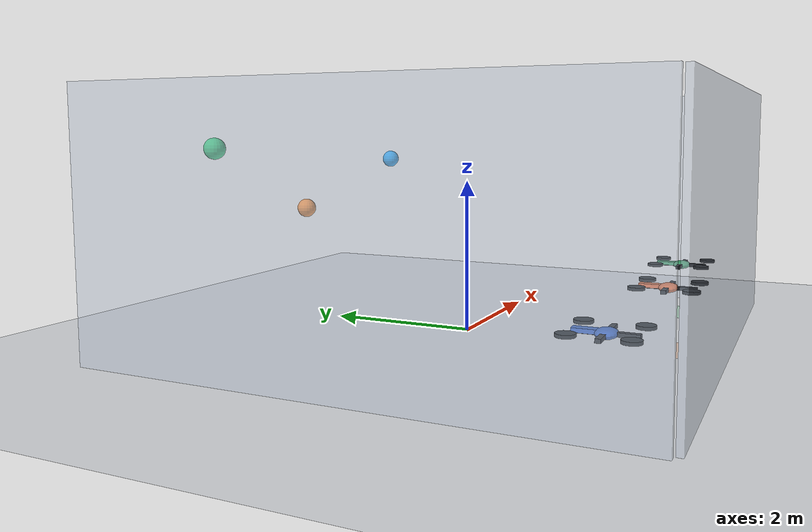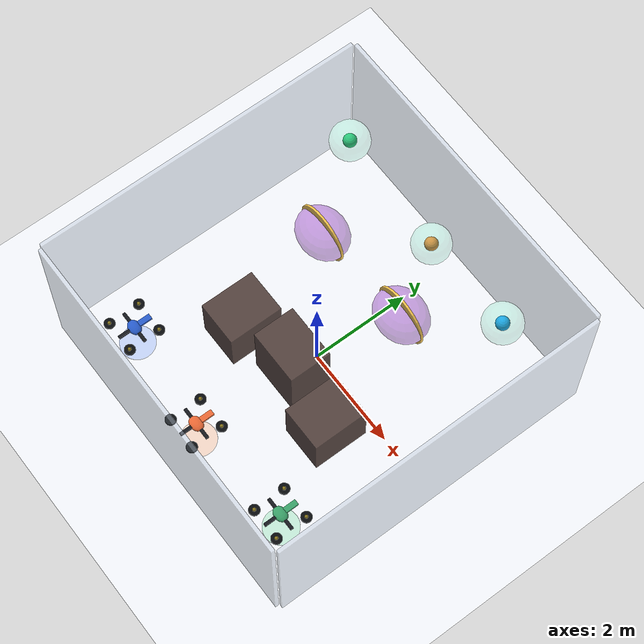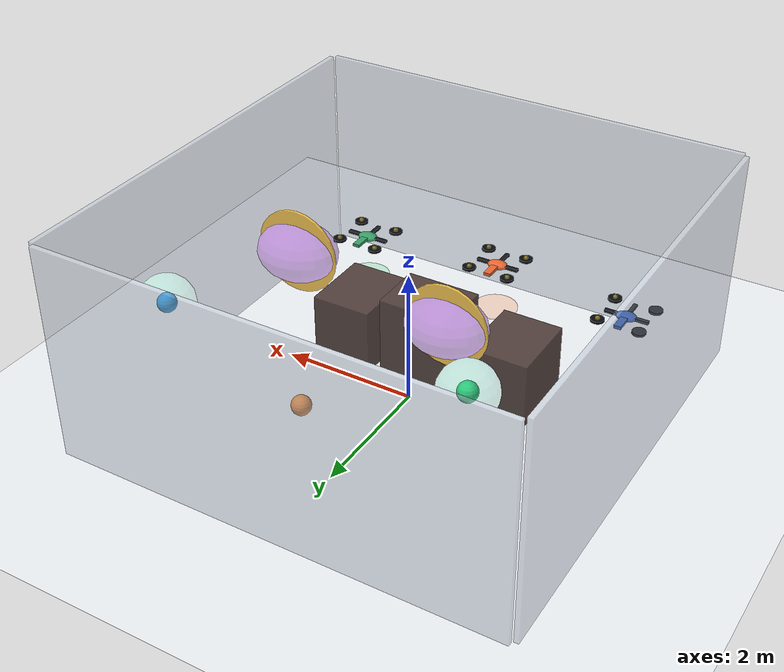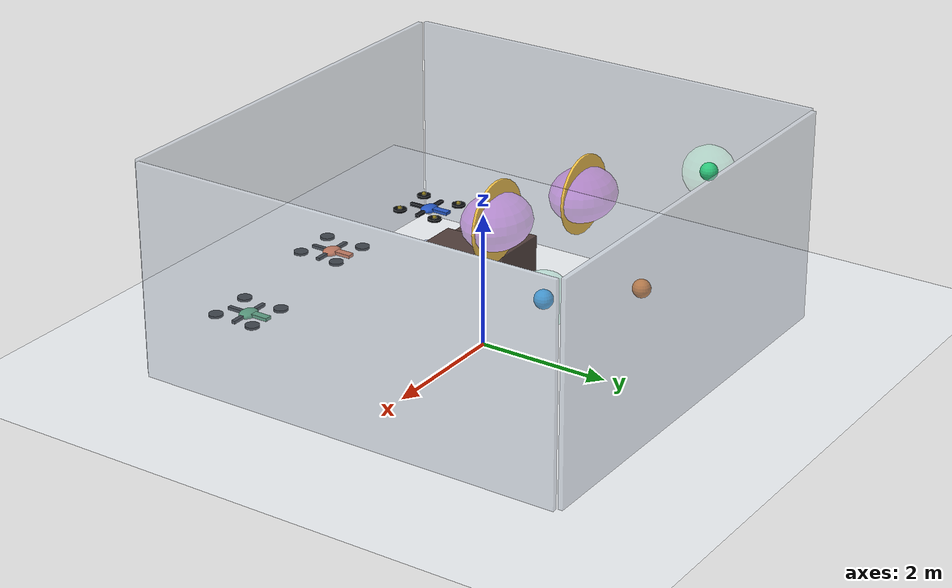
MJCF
<mujoco model="drones3_full_3d">
  <compiler angle="radian" autolimits="true"/>

  <option timestep="0.025" gravity="0 0 -9.81" integrator="Euler"/>
  <statistic center="0 0 1.8" extent="7.0"/>

  <asset>
    <texture name="sky" type="skybox" builtin="flat" rgb1="1 1 1" width="64" height="64"/>
    <texture
        name="floor_tex"
        type="2d"
        builtin="checker"
        width="512"
        height="512"
        rgb1="0.965 0.970 0.978"
        rgb2="0.890 0.910 0.930"/>
    <material name="floor_mat" texture="floor_tex" texrepeat="7 7" texuniform="true" reflectance="0.06"/>
    <material name="wall_mat" rgba="0.72 0.77 0.84 0.42" specular="0.12" shininess="0.25"/>
    <material name="ground_obstacle_mat" rgba="0.28 0.20 0.18 0.88" specular="0.10" shininess="0.22"/>
    <material name="air_hazard_mat" rgba="0.52 0.10 0.74 0.40" specular="0.18" shininess="0.35"/>
    <material name="air_hazard_core_mat" rgba="0.54 0.08 0.74 0.78" specular="0.12" shininess="0.25"/>
    <material name="hazard_ring_mat" rgba="1.00 0.76 0.18 0.82" specular="0.16" shininess="0.24"/>

    <material name="drone1_mat" rgba="0.15 0.35 0.78 1" specular="0.36" shininess="0.60"/>
    <material name="drone2_mat" rgba="0.90 0.40 0.20 1" specular="0.36" shininess="0.60"/>
    <material name="drone3_mat" rgba="0.22 0.62 0.40 1" specular="0.36" shininess="0.60"/>
    <material name="drone_dark_mat" rgba="0.08 0.09 0.11 1" specular="0.20" shininess="0.30"/>
    <material name="rotor_mat" rgba="0.03 0.04 0.05 0.90" specular="0.12" shininess="0.25"/>
    <material name="thrust_site_mat" rgba="1.0 0.86 0.20 0.55"/>

    <material name="goal1_mat" rgba="0.10 0.62 0.96 0.95" specular="0.20" shininess="0.40"/>
    <material name="goal2_mat" rgba="0.96 0.54 0.20 0.95" specular="0.20" shininess="0.40"/>
    <material name="goal3_mat" rgba="0.18 0.78 0.46 0.95" specular="0.20" shininess="0.40"/>
    <material name="goal_zone_mat" rgba="0.20 0.84 0.62 0.18"/>
    <material name="start1_mat" rgba="0.34 0.52 0.96 0.28"/>
    <material name="start2_mat" rgba="0.98 0.56 0.30 0.28"/>
    <material name="start3_mat" rgba="0.34 0.84 0.54 0.28"/>
  </asset>

  <default>
    <geom contype="0" conaffinity="0"/>
    <site type="sphere" size="0.035"/>
    <motor ctrllimited="true" ctrlrange="0 8"/>
  </default>

  <worldbody>
    <light name="key" pos="-3 -5 7" diffuse="0.95 0.95 0.95" specular="0.22 0.22 0.22"/>
    <light name="fill" pos="4 5 5" diffuse="0.48 0.50 0.52" specular="0.06 0.06 0.06"/>

    <camera name="angled" mode="fixed" pos="4.9 -7.4 4.3" xyaxes="0.82 0.57 0 -0.34 0.49 0.80"/>
    <camera name="side" mode="fixed" pos="0 -8.2 2.9" xyaxes="1 0 0 0 0.27 0.96"/>
    <camera name="top_down" mode="fixed" pos="0 -0.05 8.2" xyaxes="1 0 0 0 1 0"/>

    <geom name="floor" type="plane" pos="0 0 0" size="5.4 5.4 0.1" material="floor_mat"/>
    <geom name="arena_back" type="box" pos="0 3.35 1.6" size="3.3 0.035 1.6" material="wall_mat"/>
    <geom name="arena_front" type="box" pos="0 -3.35 1.6" size="3.3 0.035 1.6" material="wall_mat"/>
    <geom name="arena_left" type="box" pos="-3.35 0 1.6" size="0.035 3.3 1.6" material="wall_mat"/>
    <geom name="arena_right" type="box" pos="3.35 0 1.6" size="0.035 3.3 1.6" material="wall_mat"/>

    <geom name="ground_barrier_left" type="box" pos="-1.25 -0.75 0.50" size="0.45 0.55 0.50" material="ground_obstacle_mat"/>
    <geom name="ground_barrier_center" type="box" pos="0.00 -0.55 0.68" size="0.55 0.42 0.68" material="ground_obstacle_mat"/>
    <geom name="ground_barrier_right" type="box" pos="1.25 -0.75 0.50" size="0.45 0.55 0.50" material="ground_obstacle_mat"/>

    <geom name="air_hazard_left" type="ellipsoid" pos="-1.10 0.95 2.15" size="0.56 0.46 0.38" material="air_hazard_mat"/>
    <geom name="air_hazard_left_core" type="ellipsoid" pos="-1.10 0.95 2.15" size="0.34 0.28 0.24" material="air_hazard_core_mat"/>
    <geom name="air_hazard_left_ring" type="cylinder" pos="-1.10 0.95 2.15" size="0.58 0.018" euler="1.5707963268 0 0" material="hazard_ring_mat"/>

    <geom name="air_hazard_right" type="ellipsoid" pos="1.10 0.95 2.55" size="0.56 0.46 0.38" material="air_hazard_mat"/>
    <geom name="air_hazard_right_core" type="ellipsoid" pos="1.10 0.95 2.55" size="0.34 0.28 0.24" material="air_hazard_core_mat"/>
    <geom name="air_hazard_right_ring" type="cylinder" pos="1.10 0.95 2.55" size="0.58 0.018" euler="1.5707963268 0 0" material="hazard_ring_mat"/>

    <geom name="start_d1" type="cylinder" pos="-2.2 -2.45 0.014" size="0.34 0.014" material="start1_mat"/>
    <geom name="start_d2" type="cylinder" pos="0.0 -2.65 0.014" size="0.34 0.014" material="start2_mat"/>
    <geom name="start_d3" type="cylinder" pos="2.2 -2.45 0.014" size="0.34 0.014" material="start3_mat"/>

    <geom name="goal_d1_zone" type="ellipsoid" pos="2.15 2.35 2.20" size="0.38 0.38 0.38" material="goal_zone_mat"/>
    <geom name="goal_d1_core" type="sphere" pos="2.15 2.35 2.20" size="0.13" material="goal1_mat"/>
    <geom name="goal_d2_zone" type="ellipsoid" pos="0.0 2.55 1.55" size="0.38 0.38 0.38" material="goal_zone_mat"/>
    <geom name="goal_d2_core" type="sphere" pos="0.0 2.55 1.55" size="0.13" material="goal2_mat"/>
    <geom name="goal_d3_zone" type="ellipsoid" pos="-2.15 2.35 2.45" size="0.38 0.38 0.38" material="goal_zone_mat"/>
    <geom name="goal_d3_core" type="sphere" pos="-2.15 2.35 2.45" size="0.13" material="goal3_mat"/>

    <body name="drone1" pos="-2.2 -2.45 0.70">
      <freejoint name="d1_free"/>
      <inertial pos="0 0 0" mass="1.0" diaginertia="0.032 0.032 0.052"/>
      <geom name="d1_body" type="ellipsoid" pos="0 0 0" size="0.16 0.12 0.055" material="drone1_mat"/>
      <geom name="d1_arm_x" type="box" pos="0 0 0" size="0.34 0.030 0.022" material="drone_dark_mat"/>
      <geom name="d1_arm_y" type="box" pos="0 0 0" size="0.030 0.34 0.022" material="drone_dark_mat"/>
      <geom name="d1_front_marker" type="box" pos="0 0.22 0.01" size="0.055 0.13 0.024" material="drone1_mat"/>
      <geom name="d1_fl_rotor" type="cylinder" pos="-0.32 0.32 0.025" size="0.105 0.018" material="rotor_mat"/>
      <geom name="d1_fr_rotor" type="cylinder" pos="0.32 0.32 0.025" size="0.105 0.018" material="rotor_mat"/>
      <geom name="d1_rr_rotor" type="cylinder" pos="0.32 -0.32 0.025" size="0.105 0.018" material="rotor_mat"/>
      <geom name="d1_rl_rotor" type="cylinder" pos="-0.32 -0.32 0.025" size="0.105 0.018" material="rotor_mat"/>
      <site name="d1_fl_thruster" pos="-0.32 0.32 0.05" material="thrust_site_mat"/>
      <site name="d1_fr_thruster" pos="0.32 0.32 0.05" material="thrust_site_mat"/>
      <site name="d1_rr_thruster" pos="0.32 -0.32 0.05" material="thrust_site_mat"/>
      <site name="d1_rl_thruster" pos="-0.32 -0.32 0.05" material="thrust_site_mat"/>
    </body>

    <body name="drone2" pos="0 -2.65 0.78">
      <freejoint name="d2_free"/>
      <inertial pos="0 0 0" mass="1.0" diaginertia="0.032 0.032 0.052"/>
      <geom name="d2_body" type="ellipsoid" pos="0 0 0" size="0.16 0.12 0.055" material="drone2_mat"/>
      <geom name="d2_arm_x" type="box" pos="0 0 0" size="0.34 0.030 0.022" material="drone_dark_mat"/>
      <geom name="d2_arm_y" type="box" pos="0 0 0" size="0.030 0.34 0.022" material="drone_dark_mat"/>
      <geom name="d2_front_marker" type="box" pos="0 0.22 0.01" size="0.055 0.13 0.024" material="drone2_mat"/>
      <geom name="d2_fl_rotor" type="cylinder" pos="-0.32 0.32 0.025" size="0.105 0.018" material="rotor_mat"/>
      <geom name="d2_fr_rotor" type="cylinder" pos="0.32 0.32 0.025" size="0.105 0.018" material="rotor_mat"/>
      <geom name="d2_rr_rotor" type="cylinder" pos="0.32 -0.32 0.025" size="0.105 0.018" material="rotor_mat"/>
      <geom name="d2_rl_rotor" type="cylinder" pos="-0.32 -0.32 0.025" size="0.105 0.018" material="rotor_mat"/>
      <site name="d2_fl_thruster" pos="-0.32 0.32 0.05" material="thrust_site_mat"/>
      <site name="d2_fr_thruster" pos="0.32 0.32 0.05" material="thrust_site_mat"/>
      <site name="d2_rr_thruster" pos="0.32 -0.32 0.05" material="thrust_site_mat"/>
      <site name="d2_rl_thruster" pos="-0.32 -0.32 0.05" material="thrust_site_mat"/>
    </body>

    <body name="drone3" pos="2.2 -2.45 0.72">
      <freejoint name="d3_free"/>
      <inertial pos="0 0 0" mass="1.0" diaginertia="0.032 0.032 0.052"/>
      <geom name="d3_body" type="ellipsoid" pos="0 0 0" size="0.16 0.12 0.055" material="drone3_mat"/>
      <geom name="d3_arm_x" type="box" pos="0 0 0" size="0.34 0.030 0.022" material="drone_dark_mat"/>
      <geom name="d3_arm_y" type="box" pos="0 0 0" size="0.030 0.34 0.022" material="drone_dark_mat"/>
      <geom name="d3_front_marker" type="box" pos="0 0.22 0.01" size="0.055 0.13 0.024" material="drone3_mat"/>
      <geom name="d3_fl_rotor" type="cylinder" pos="-0.32 0.32 0.025" size="0.105 0.018" material="rotor_mat"/>
      <geom name="d3_fr_rotor" type="cylinder" pos="0.32 0.32 0.025" size="0.105 0.018" material="rotor_mat"/>
      <geom name="d3_rr_rotor" type="cylinder" pos="0.32 -0.32 0.025" size="0.105 0.018" material="rotor_mat"/>
      <geom name="d3_rl_rotor" type="cylinder" pos="-0.32 -0.32 0.025" size="0.105 0.018" material="rotor_mat"/>
      <site name="d3_fl_thruster" pos="-0.32 0.32 0.05" material="thrust_site_mat"/>
      <site name="d3_fr_thruster" pos="0.32 0.32 0.05" material="thrust_site_mat"/>
      <site name="d3_rr_thruster" pos="0.32 -0.32 0.05" material="thrust_site_mat"/>
      <site name="d3_rl_thruster" pos="-0.32 -0.32 0.05" material="thrust_site_mat"/>
    </body>
  </worldbody>

  <actuator>
    <motor name="d1_front_left" site="d1_fl_thruster" gear="0 0 1 0 0 0.035"/>
    <motor name="d1_front_right" site="d1_fr_thruster" gear="0 0 1 0 0 -0.035"/>
    <motor name="d1_rear_right" site="d1_rr_thruster" gear="0 0 1 0 0 0.035"/>
    <motor name="d1_rear_left" site="d1_rl_thruster" gear="0 0 1 0 0 -0.035"/>

    <motor name="d2_front_left" site="d2_fl_thruster" gear="0 0 1 0 0 0.035"/>
    <motor name="d2_front_right" site="d2_fr_thruster" gear="0 0 1 0 0 -0.035"/>
    <motor name="d2_rear_right" site="d2_rr_thruster" gear="0 0 1 0 0 0.035"/>
    <motor name="d2_rear_left" site="d2_rl_thruster" gear="0 0 1 0 0 -0.035"/>

    <motor name="d3_front_left" site="d3_fl_thruster" gear="0 0 1 0 0 0.035"/>
    <motor name="d3_front_right" site="d3_fr_thruster" gear="0 0 1 0 0 -0.035"/>
    <motor name="d3_rear_right" site="d3_rr_thruster" gear="0 0 1 0 0 0.035"/>
    <motor name="d3_rear_left" site="d3_rl_thruster" gear="0 0 1 0 0 -0.035"/>
  </actuator>
</mujoco>
